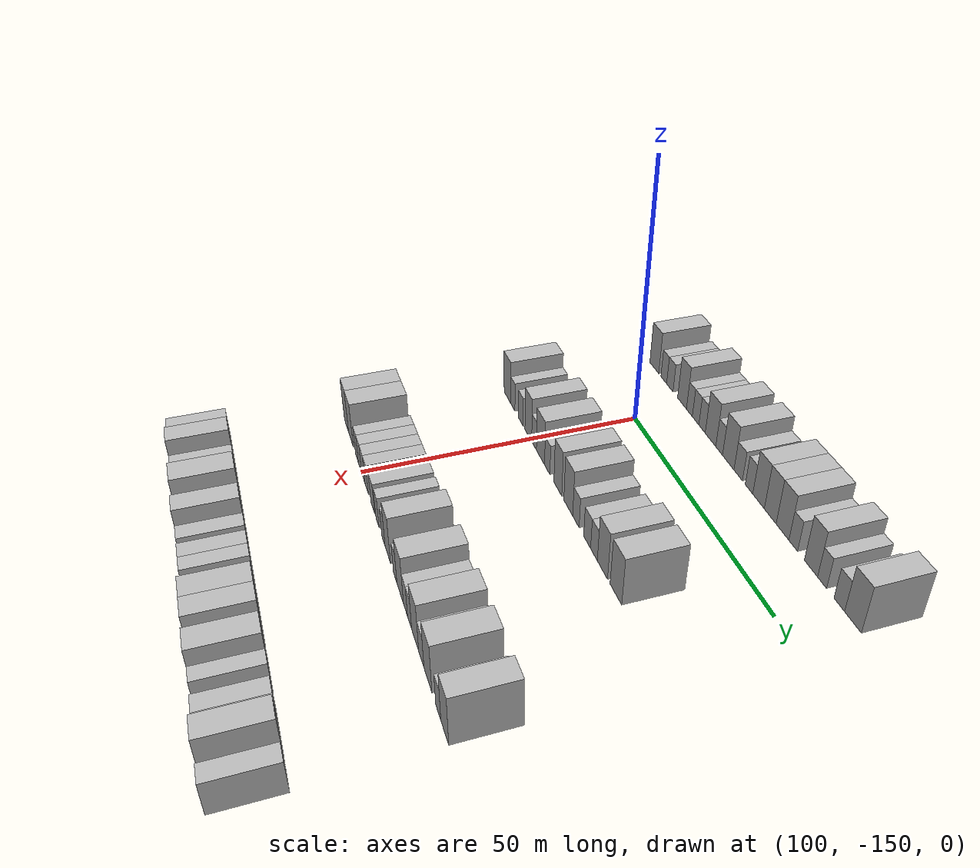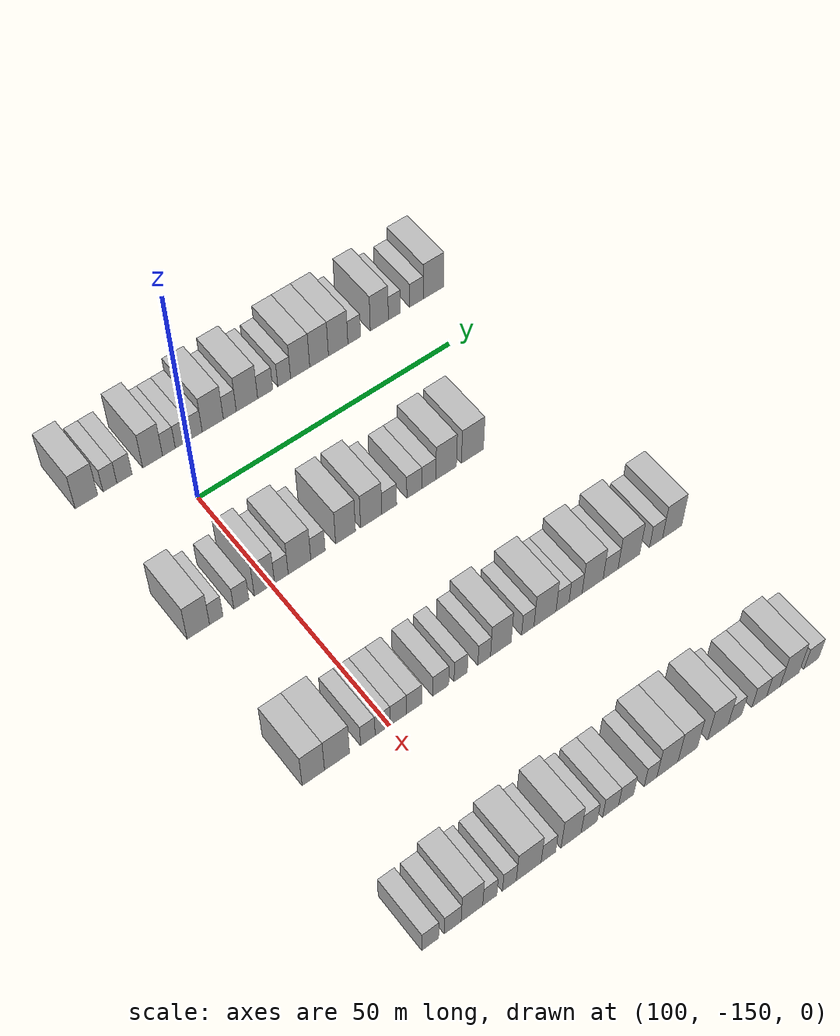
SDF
<sdf version="1.6">
 <world name="default">
  <model name="building_533">
   <static>1</static>
   <pose>85.0000 -164.3437 0 0.000000 0.000000 0.000000</pose>
   <link name="link">
    <pose>0 0 4.50 0 0 0</pose>
    <collision name="collision"><geometry><box><size>10.0000 4.1653 9.0000</size></box></geometry></collision>
    <visual name="visual">
     <cast_shadows>0</cast_shadows>
     <geometry><box><size>10.0000 4.1653 9.0000</size></box></geometry>
     <material>
      <script>
       <uri>model://HANNAS_wall/materials/scripts</uri>
       <uri>model://HANNAS_wall/materials/textures</uri>
       <name>vrc/HANNAS_wall</name>
      </script>
     </material>
    </visual>
   </link>
  </model>
  <model name="building_534">
   <static>1</static>
   <pose>85.0000 -159.9639 0 0.000000 0.000000 0.000000</pose>
   <link name="link">
    <pose>0 0 3.00 0 0 0</pose>
    <collision name="collision"><geometry><box><size>10.0000 2.5944 6.0000</size></box></geometry></collision>
    <visual name="visual">
     <cast_shadows>0</cast_shadows>
     <geometry><box><size>10.0000 2.5944 6.0000</size></box></geometry>
     <material>
      <script>
       <uri>model://HANNAS_wall/materials/scripts</uri>
       <uri>model://HANNAS_wall/materials/textures</uri>
       <name>vrc/HANNAS_wall</name>
      </script>
     </material>
    </visual>
   </link>
  </model>
  <model name="building_535">
   <static>1</static>
   <pose>85.0000 -157.2455 0 0.000000 0.000000 0.000000</pose>
   <link name="link">
    <pose>0 0 3.00 0 0 0</pose>
    <collision name="collision"><geometry><box><size>10.0000 2.8423 6.0000</size></box></geometry></collision>
    <visual name="visual">
     <cast_shadows>0</cast_shadows>
     <geometry><box><size>10.0000 2.8423 6.0000</size></box></geometry>
     <material>
      <script>
       <uri>model://HANNAS_wall/materials/scripts</uri>
       <uri>model://HANNAS_wall/materials/textures</uri>
       <name>vrc/HANNAS_wall</name>
      </script>
     </material>
    </visual>
   </link>
  </model>
  <model name="building_536">
   <static>1</static>
   <pose>85.0000 -151.9425 0 0.000000 0.000000 0.000000</pose>
   <link name="link">
    <pose>0 0 4.50 0 0 0</pose>
    <collision name="collision"><geometry><box><size>10.0000 3.7637 9.0000</size></box></geometry></collision>
    <visual name="visual">
     <cast_shadows>0</cast_shadows>
     <geometry><box><size>10.0000 3.7637 9.0000</size></box></geometry>
     <material>
      <script>
       <uri>model://HANNAS_wall/materials/scripts</uri>
       <uri>model://HANNAS_wall/materials/textures</uri>
       <name>vrc/HANNAS_wall</name>
      </script>
     </material>
    </visual>
   </link>
  </model>
  <model name="building_537">
   <static>1</static>
   <pose>85.0000 -148.8406 0 0.000000 0.000000 0.000000</pose>
   <link name="link">
    <pose>0 0 3.00 0 0 0</pose>
    <collision name="collision"><geometry><box><size>10.0000 2.4400 6.0000</size></box></geometry></collision>
    <visual name="visual">
     <cast_shadows>0</cast_shadows>
     <geometry><box><size>10.0000 2.4400 6.0000</size></box></geometry>
     <material>
      <script>
       <uri>model://HANNAS_wall/materials/scripts</uri>
       <uri>model://HANNAS_wall/materials/textures</uri>
       <name>vrc/HANNAS_wall</name>
      </script>
     </material>
    </visual>
   </link>
  </model>
  <model name="building_538">
   <static>1</static>
   <pose>85.0000 -146.2922 0 0.000000 0.000000 0.000000</pose>
   <link name="link">
    <pose>0 0 3.00 0 0 0</pose>
    <collision name="collision"><geometry><box><size>10.0000 2.6570 6.0000</size></box></geometry></collision>
    <visual name="visual">
     <cast_shadows>0</cast_shadows>
     <geometry><box><size>10.0000 2.6570 6.0000</size></box></geometry>
     <material>
      <script>
       <uri>model://HANNAS_wall/materials/scripts</uri>
       <uri>model://HANNAS_wall/materials/textures</uri>
       <name>vrc/HANNAS_wall</name>
      </script>
     </material>
    </visual>
   </link>
  </model>
  <model name="building_539">
   <static>1</static>
   <pose>85.0000 -143.6993 0 0.000000 0.000000 0.000000</pose>
   <link name="link">
    <pose>0 0 3.00 0 0 0</pose>
    <collision name="collision"><geometry><box><size>10.0000 2.5288 6.0000</size></box></geometry></collision>
    <visual name="visual">
     <cast_shadows>0</cast_shadows>
     <geometry><box><size>10.0000 2.5288 6.0000</size></box></geometry>
     <material>
      <script>
       <uri>model://HANNAS_wall/materials/scripts</uri>
       <uri>model://HANNAS_wall/materials/textures</uri>
       <name>vrc/HANNAS_wall</name>
      </script>
     </material>
    </visual>
   </link>
  </model>
  <model name="building_540">
   <static>1</static>
   <pose>85.0000 -140.3887 0 0.000000 0.000000 0.000000</pose>
   <link name="link">
    <pose>0 0 4.50 0 0 0</pose>
    <collision name="collision"><geometry><box><size>10.0000 4.0924 9.0000</size></box></geometry></collision>
    <visual name="visual">
     <cast_shadows>0</cast_shadows>
     <geometry><box><size>10.0000 4.0924 9.0000</size></box></geometry>
     <material>
      <script>
       <uri>model://HANNAS_wall/materials/scripts</uri>
       <uri>model://HANNAS_wall/materials/textures</uri>
       <name>vrc/HANNAS_wall</name>
      </script>
     </material>
    </visual>
   </link>
  </model>
  <model name="building_541">
   <static>1</static>
   <pose>85.0000 -137.0763 0 0.000000 0.000000 0.000000</pose>
   <link name="link">
    <pose>0 0 3.00 0 0 0</pose>
    <collision name="collision"><geometry><box><size>10.0000 2.5324 6.0000</size></box></geometry></collision>
    <visual name="visual">
     <cast_shadows>0</cast_shadows>
     <geometry><box><size>10.0000 2.5324 6.0000</size></box></geometry>
     <material>
      <script>
       <uri>model://HANNAS_wall/materials/scripts</uri>
       <uri>model://HANNAS_wall/materials/textures</uri>
       <name>vrc/HANNAS_wall</name>
      </script>
     </material>
    </visual>
   </link>
  </model>
  <model name="building_542">
   <static>1</static>
   <pose>85.0000 -133.7089 0 0.000000 0.000000 0.000000</pose>
   <link name="link">
    <pose>0 0 4.50 0 0 0</pose>
    <collision name="collision"><geometry><box><size>10.0000 4.2025 9.0000</size></box></geometry></collision>
    <visual name="visual">
     <cast_shadows>0</cast_shadows>
     <geometry><box><size>10.0000 4.2025 9.0000</size></box></geometry>
     <material>
      <script>
       <uri>model://HANNAS_wall/materials/scripts</uri>
       <uri>model://HANNAS_wall/materials/textures</uri>
       <name>vrc/HANNAS_wall</name>
      </script>
     </material>
    </visual>
   </link>
  </model>
  <model name="building_543">
   <static>1</static>
   <pose>85.0000 -130.1119 0 0.000000 0.000000 0.000000</pose>
   <link name="link">
    <pose>0 0 3.00 0 0 0</pose>
    <collision name="collision"><geometry><box><size>10.0000 2.9914 6.0000</size></box></geometry></collision>
    <visual name="visual">
     <cast_shadows>0</cast_shadows>
     <geometry><box><size>10.0000 2.9914 6.0000</size></box></geometry>
     <material>
      <script>
       <uri>model://HANNAS_wall/materials/scripts</uri>
       <uri>model://HANNAS_wall/materials/textures</uri>
       <name>vrc/HANNAS_wall</name>
      </script>
     </material>
    </visual>
   </link>
  </model>
  <model name="building_544">
   <static>1</static>
   <pose>85.0000 -126.3355 0 0.000000 0.000000 0.000000</pose>
   <link name="link">
    <pose>0 0 3.00 0 0 0</pose>
    <collision name="collision"><geometry><box><size>10.0000 2.5615 6.0000</size></box></geometry></collision>
    <visual name="visual">
     <cast_shadows>0</cast_shadows>
     <geometry><box><size>10.0000 2.5615 6.0000</size></box></geometry>
     <material>
      <script>
       <uri>model://HANNAS_wall/materials/scripts</uri>
       <uri>model://HANNAS_wall/materials/textures</uri>
       <name>vrc/HANNAS_wall</name>
      </script>
     </material>
    </visual>
   </link>
  </model>
  <model name="building_545">
   <static>1</static>
   <pose>85.0000 -123.1326 0 0.000000 0.000000 0.000000</pose>
   <link name="link">
    <pose>0 0 4.50 0 0 0</pose>
    <collision name="collision"><geometry><box><size>10.0000 3.8442 9.0000</size></box></geometry></collision>
    <visual name="visual">
     <cast_shadows>0</cast_shadows>
     <geometry><box><size>10.0000 3.8442 9.0000</size></box></geometry>
     <material>
      <script>
       <uri>model://HANNAS_wall/materials/scripts</uri>
       <uri>model://HANNAS_wall/materials/textures</uri>
       <name>vrc/HANNAS_wall</name>
      </script>
     </material>
    </visual>
   </link>
  </model>
  <model name="building_546">
   <static>1</static>
   <pose>85.0000 -119.3163 0 0.000000 0.000000 0.000000</pose>
   <link name="link">
    <pose>0 0 4.50 0 0 0</pose>
    <collision name="collision"><geometry><box><size>10.0000 3.7884 9.0000</size></box></geometry></collision>
    <visual name="visual">
     <cast_shadows>0</cast_shadows>
     <geometry><box><size>10.0000 3.7884 9.0000</size></box></geometry>
     <material>
      <script>
       <uri>model://HANNAS_wall/materials/scripts</uri>
       <uri>model://HANNAS_wall/materials/textures</uri>
       <name>vrc/HANNAS_wall</name>
      </script>
     </material>
    </visual>
   </link>
  </model>
  <model name="building_547">
   <static>1</static>
   <pose>85.0000 -115.4372 0 0.000000 0.000000 0.000000</pose>
   <link name="link">
    <pose>0 0 4.50 0 0 0</pose>
    <collision name="collision"><geometry><box><size>10.0000 3.9698 9.0000</size></box></geometry></collision>
    <visual name="visual">
     <cast_shadows>0</cast_shadows>
     <geometry><box><size>10.0000 3.9698 9.0000</size></box></geometry>
     <material>
      <script>
       <uri>model://HANNAS_wall/materials/scripts</uri>
       <uri>model://HANNAS_wall/materials/textures</uri>
       <name>vrc/HANNAS_wall</name>
      </script>
     </material>
    </visual>
   </link>
  </model>
  <model name="building_548">
   <static>1</static>
   <pose>85.0000 -112.1477 0 0.000000 0.000000 0.000000</pose>
   <link name="link">
    <pose>0 0 3.00 0 0 0</pose>
    <collision name="collision"><geometry><box><size>10.0000 2.6091 6.0000</size></box></geometry></collision>
    <visual name="visual">
     <cast_shadows>0</cast_shadows>
     <geometry><box><size>10.0000 2.6091 6.0000</size></box></geometry>
     <material>
      <script>
       <uri>model://HANNAS_wall/materials/scripts</uri>
       <uri>model://HANNAS_wall/materials/textures</uri>
       <name>vrc/HANNAS_wall</name>
      </script>
     </material>
    </visual>
   </link>
  </model>
  <model name="building_549">
   <static>1</static>
   <pose>85.0000 -106.9671 0 0.000000 0.000000 0.000000</pose>
   <link name="link">
    <pose>0 0 4.50 0 0 0</pose>
    <collision name="collision"><geometry><box><size>10.0000 3.7522 9.0000</size></box></geometry></collision>
    <visual name="visual">
     <cast_shadows>0</cast_shadows>
     <geometry><box><size>10.0000 3.7522 9.0000</size></box></geometry>
     <material>
      <script>
       <uri>model://HANNAS_wall/materials/scripts</uri>
       <uri>model://HANNAS_wall/materials/textures</uri>
       <name>vrc/HANNAS_wall</name>
      </script>
     </material>
    </visual>
   </link>
  </model>
  <model name="building_550">
   <static>1</static>
   <pose>85.0000 -103.8448 0 0.000000 0.000000 0.000000</pose>
   <link name="link">
    <pose>0 0 3.00 0 0 0</pose>
    <collision name="collision"><geometry><box><size>10.0000 2.4924 6.0000</size></box></geometry></collision>
    <visual name="visual">
     <cast_shadows>0</cast_shadows>
     <geometry><box><size>10.0000 2.4924 6.0000</size></box></geometry>
     <material>
      <script>
       <uri>model://HANNAS_wall/materials/scripts</uri>
       <uri>model://HANNAS_wall/materials/textures</uri>
       <name>vrc/HANNAS_wall</name>
      </script>
     </material>
    </visual>
   </link>
  </model>
  <model name="building_551">
   <static>1</static>
   <pose>85.0000 -99.1982 0 0.000000 0.000000 0.000000</pose>
   <link name="link">
    <pose>0 0 3.00 0 0 0</pose>
    <collision name="collision"><geometry><box><size>10.0000 2.8006 6.0000</size></box></geometry></collision>
    <visual name="visual">
     <cast_shadows>0</cast_shadows>
     <geometry><box><size>10.0000 2.8006 6.0000</size></box></geometry>
     <material>
      <script>
       <uri>model://HANNAS_wall/materials/scripts</uri>
       <uri>model://HANNAS_wall/materials/textures</uri>
       <name>vrc/HANNAS_wall</name>
      </script>
     </material>
    </visual>
   </link>
  </model>
  <model name="building_552">
   <static>1</static>
   <pose>85.0000 -95.6535 0 0.000000 0.000000 0.000000</pose>
   <link name="link">
    <pose>0 0 4.50 0 0 0</pose>
    <collision name="collision"><geometry><box><size>10.0000 4.2888 9.0000</size></box></geometry></collision>
    <visual name="visual">
     <cast_shadows>0</cast_shadows>
     <geometry><box><size>10.0000 4.2888 9.0000</size></box></geometry>
     <material>
      <script>
       <uri>model://HANNAS_wall/materials/scripts</uri>
       <uri>model://HANNAS_wall/materials/textures</uri>
       <name>vrc/HANNAS_wall</name>
      </script>
     </material>
    </visual>
   </link>
  </model>
  <model name="building_769">
   <static>1</static>
   <pose>115.0000 -163.4485 0 0.000000 0.000000 0.000000</pose>
   <link name="link">
    <pose>0 0 4.50 0 0 0</pose>
    <collision name="collision"><geometry><box><size>10.0000 4.0801 9.0000</size></box></geometry></collision>
    <visual name="visual">
     <cast_shadows>0</cast_shadows>
     <geometry><box><size>10.0000 4.0801 9.0000</size></box></geometry>
     <material>
      <script>
       <uri>model://HANNAS_wall/materials/scripts</uri>
       <uri>model://HANNAS_wall/materials/textures</uri>
       <name>vrc/HANNAS_wall</name>
      </script>
     </material>
    </visual>
   </link>
  </model>
  <model name="building_770">
   <static>1</static>
   <pose>115.0000 -160.1868 0 0.000000 0.000000 0.000000</pose>
   <link name="link">
    <pose>0 0 3.00 0 0 0</pose>
    <collision name="collision"><geometry><box><size>10.0000 2.4434 6.0000</size></box></geometry></collision>
    <visual name="visual">
     <cast_shadows>0</cast_shadows>
     <geometry><box><size>10.0000 2.4434 6.0000</size></box></geometry>
     <material>
      <script>
       <uri>model://HANNAS_wall/materials/scripts</uri>
       <uri>model://HANNAS_wall/materials/textures</uri>
       <name>vrc/HANNAS_wall</name>
      </script>
     </material>
    </visual>
   </link>
  </model>
  <model name="building_771">
   <static>1</static>
   <pose>115.0000 -155.5765 0 0.000000 0.000000 0.000000</pose>
   <link name="link">
    <pose>0 0 3.00 0 0 0</pose>
    <collision name="collision"><geometry><box><size>10.0000 2.7772 6.0000</size></box></geometry></collision>
    <visual name="visual">
     <cast_shadows>0</cast_shadows>
     <geometry><box><size>10.0000 2.7772 6.0000</size></box></geometry>
     <material>
      <script>
       <uri>model://HANNAS_wall/materials/scripts</uri>
       <uri>model://HANNAS_wall/materials/textures</uri>
       <name>vrc/HANNAS_wall</name>
      </script>
     </material>
    </visual>
   </link>
  </model>
  <model name="building_772">
   <static>1</static>
   <pose>115.0000 -151.3048 0 0.000000 0.000000 0.000000</pose>
   <link name="link">
    <pose>0 0 4.50 0 0 0</pose>
    <collision name="collision"><geometry><box><size>10.0000 3.7663 9.0000</size></box></geometry></collision>
    <visual name="visual">
     <cast_shadows>0</cast_shadows>
     <geometry><box><size>10.0000 3.7663 9.0000</size></box></geometry>
     <material>
      <script>
       <uri>model://HANNAS_wall/materials/scripts</uri>
       <uri>model://HANNAS_wall/materials/textures</uri>
       <name>vrc/HANNAS_wall</name>
      </script>
     </material>
    </visual>
   </link>
  </model>
  <model name="building_773">
   <static>1</static>
   <pose>115.0000 -148.1415 0 0.000000 0.000000 0.000000</pose>
   <link name="link">
    <pose>0 0 3.00 0 0 0</pose>
    <collision name="collision"><geometry><box><size>10.0000 2.5602 6.0000</size></box></geometry></collision>
    <visual name="visual">
     <cast_shadows>0</cast_shadows>
     <geometry><box><size>10.0000 2.5602 6.0000</size></box></geometry>
     <material>
      <script>
       <uri>model://HANNAS_wall/materials/scripts</uri>
       <uri>model://HANNAS_wall/materials/textures</uri>
       <name>vrc/HANNAS_wall</name>
      </script>
     </material>
    </visual>
   </link>
  </model>
  <model name="building_774">
   <static>1</static>
   <pose>115.0000 -144.7266 0 0.000000 0.000000 0.000000</pose>
   <link name="link">
    <pose>0 0 4.50 0 0 0</pose>
    <collision name="collision"><geometry><box><size>10.0000 4.2696 9.0000</size></box></geometry></collision>
    <visual name="visual">
     <cast_shadows>0</cast_shadows>
     <geometry><box><size>10.0000 4.2696 9.0000</size></box></geometry>
     <material>
      <script>
       <uri>model://HANNAS_wall/materials/scripts</uri>
       <uri>model://HANNAS_wall/materials/textures</uri>
       <name>vrc/HANNAS_wall</name>
      </script>
     </material>
    </visual>
   </link>
  </model>
  <model name="building_775">
   <static>1</static>
   <pose>115.0000 -141.2272 0 0.000000 0.000000 0.000000</pose>
   <link name="link">
    <pose>0 0 3.00 0 0 0</pose>
    <collision name="collision"><geometry><box><size>10.0000 2.7291 6.0000</size></box></geometry></collision>
    <visual name="visual">
     <cast_shadows>0</cast_shadows>
     <geometry><box><size>10.0000 2.7291 6.0000</size></box></geometry>
     <material>
      <script>
       <uri>model://HANNAS_wall/materials/scripts</uri>
       <uri>model://HANNAS_wall/materials/textures</uri>
       <name>vrc/HANNAS_wall</name>
      </script>
     </material>
    </visual>
   </link>
  </model>
  <model name="building_776">
   <static>1</static>
   <pose>115.0000 -135.9565 0 0.000000 0.000000 0.000000</pose>
   <link name="link">
    <pose>0 0 4.50 0 0 0</pose>
    <collision name="collision"><geometry><box><size>10.0000 3.8124 9.0000</size></box></geometry></collision>
    <visual name="visual">
     <cast_shadows>0</cast_shadows>
     <geometry><box><size>10.0000 3.8124 9.0000</size></box></geometry>
     <material>
      <script>
       <uri>model://HANNAS_wall/materials/scripts</uri>
       <uri>model://HANNAS_wall/materials/textures</uri>
       <name>vrc/HANNAS_wall</name>
      </script>
     </material>
    </visual>
   </link>
  </model>
  <model name="building_777">
   <static>1</static>
   <pose>115.0000 -130.9983 0 0.000000 0.000000 0.000000</pose>
   <link name="link">
    <pose>0 0 4.50 0 0 0</pose>
    <collision name="collision"><geometry><box><size>10.0000 4.1040 9.0000</size></box></geometry></collision>
    <visual name="visual">
     <cast_shadows>0</cast_shadows>
     <geometry><box><size>10.0000 4.1040 9.0000</size></box></geometry>
     <material>
      <script>
       <uri>model://HANNAS_wall/materials/scripts</uri>
       <uri>model://HANNAS_wall/materials/textures</uri>
       <name>vrc/HANNAS_wall</name>
      </script>
     </material>
    </visual>
   </link>
  </model>
  <model name="building_778">
   <static>1</static>
   <pose>115.0000 -127.4901 0 0.000000 0.000000 0.000000</pose>
   <link name="link">
    <pose>0 0 3.00 0 0 0</pose>
    <collision name="collision"><geometry><box><size>10.0000 2.9124 6.0000</size></box></geometry></collision>
    <visual name="visual">
     <cast_shadows>0</cast_shadows>
     <geometry><box><size>10.0000 2.9124 6.0000</size></box></geometry>
     <material>
      <script>
       <uri>model://HANNAS_wall/materials/scripts</uri>
       <uri>model://HANNAS_wall/materials/textures</uri>
       <name>vrc/HANNAS_wall</name>
      </script>
     </material>
    </visual>
   </link>
  </model>
  <model name="building_779">
   <static>1</static>
   <pose>115.0000 -122.5526 0 0.000000 0.000000 0.000000</pose>
   <link name="link">
    <pose>0 0 3.00 0 0 0</pose>
    <collision name="collision"><geometry><box><size>10.0000 2.9626 6.0000</size></box></geometry></collision>
    <visual name="visual">
     <cast_shadows>0</cast_shadows>
     <geometry><box><size>10.0000 2.9626 6.0000</size></box></geometry>
     <material>
      <script>
       <uri>model://HANNAS_wall/materials/scripts</uri>
       <uri>model://HANNAS_wall/materials/textures</uri>
       <name>vrc/HANNAS_wall</name>
      </script>
     </material>
    </visual>
   </link>
  </model>
  <model name="building_780">
   <static>1</static>
   <pose>115.0000 -119.6679 0 0.000000 0.000000 0.000000</pose>
   <link name="link">
    <pose>0 0 3.00 0 0 0</pose>
    <collision name="collision"><geometry><box><size>10.0000 2.8067 6.0000</size></box></geometry></collision>
    <visual name="visual">
     <cast_shadows>0</cast_shadows>
     <geometry><box><size>10.0000 2.8067 6.0000</size></box></geometry>
     <material>
      <script>
       <uri>model://HANNAS_wall/materials/scripts</uri>
       <uri>model://HANNAS_wall/materials/textures</uri>
       <name>vrc/HANNAS_wall</name>
      </script>
     </material>
    </visual>
   </link>
  </model>
  <model name="building_781">
   <static>1</static>
   <pose>115.0000 -116.2077 0 0.000000 0.000000 0.000000</pose>
   <link name="link">
    <pose>0 0 4.50 0 0 0</pose>
    <collision name="collision"><geometry><box><size>10.0000 4.1136 9.0000</size></box></geometry></collision>
    <visual name="visual">
     <cast_shadows>0</cast_shadows>
     <geometry><box><size>10.0000 4.1136 9.0000</size></box></geometry>
     <material>
      <script>
       <uri>model://HANNAS_wall/materials/scripts</uri>
       <uri>model://HANNAS_wall/materials/textures</uri>
       <name>vrc/HANNAS_wall</name>
      </script>
     </material>
    </visual>
   </link>
  </model>
  <model name="building_782">
   <static>1</static>
   <pose>115.0000 -110.9227 0 0.000000 0.000000 0.000000</pose>
   <link name="link">
    <pose>0 0 4.50 0 0 0</pose>
    <collision name="collision"><geometry><box><size>10.0000 4.4564 9.0000</size></box></geometry></collision>
    <visual name="visual">
     <cast_shadows>0</cast_shadows>
     <geometry><box><size>10.0000 4.4564 9.0000</size></box></geometry>
     <material>
      <script>
       <uri>model://HANNAS_wall/materials/scripts</uri>
       <uri>model://HANNAS_wall/materials/textures</uri>
       <name>vrc/HANNAS_wall</name>
      </script>
     </material>
    </visual>
   </link>
  </model>
  <model name="building_1003">
   <static>1</static>
   <pose>145.0000 -163.7457 0 0.000000 0.000000 0.000000</pose>
   <link name="link">
    <pose>0 0 4.50 0 0 0</pose>
    <collision name="collision"><geometry><box><size>10.0000 3.9804 9.0000</size></box></geometry></collision>
    <visual name="visual">
     <cast_shadows>0</cast_shadows>
     <geometry><box><size>10.0000 3.9804 9.0000</size></box></geometry>
     <material>
      <script>
       <uri>model://HANNAS_wall/materials/scripts</uri>
       <uri>model://HANNAS_wall/materials/textures</uri>
       <name>vrc/HANNAS_wall</name>
      </script>
     </material>
    </visual>
   </link>
  </model>
  <model name="building_1004">
   <static>1</static>
   <pose>145.0000 -159.5216 0 0.000000 0.000000 0.000000</pose>
   <link name="link">
    <pose>0 0 4.50 0 0 0</pose>
    <collision name="collision"><geometry><box><size>10.0000 4.4676 9.0000</size></box></geometry></collision>
    <visual name="visual">
     <cast_shadows>0</cast_shadows>
     <geometry><box><size>10.0000 4.4676 9.0000</size></box></geometry>
     <material>
      <script>
       <uri>model://HANNAS_wall/materials/scripts</uri>
       <uri>model://HANNAS_wall/materials/textures</uri>
       <name>vrc/HANNAS_wall</name>
      </script>
     </material>
    </visual>
   </link>
  </model>
  <model name="building_1005">
   <static>1</static>
   <pose>145.0000 -153.9661 0 0.000000 0.000000 0.000000</pose>
   <link name="link">
    <pose>0 0 3.00 0 0 0</pose>
    <collision name="collision"><geometry><box><size>10.0000 2.6433 6.0000</size></box></geometry></collision>
    <visual name="visual">
     <cast_shadows>0</cast_shadows>
     <geometry><box><size>10.0000 2.6433 6.0000</size></box></geometry>
     <material>
      <script>
       <uri>model://HANNAS_wall/materials/scripts</uri>
       <uri>model://HANNAS_wall/materials/textures</uri>
       <name>vrc/HANNAS_wall</name>
      </script>
     </material>
    </visual>
   </link>
  </model>
  <model name="building_1006">
   <static>1</static>
   <pose>145.0000 -151.2412 0 0.000000 0.000000 0.000000</pose>
   <link name="link">
    <pose>0 0 3.00 0 0 0</pose>
    <collision name="collision"><geometry><box><size>10.0000 2.8065 6.0000</size></box></geometry></collision>
    <visual name="visual">
     <cast_shadows>0</cast_shadows>
     <geometry><box><size>10.0000 2.8065 6.0000</size></box></geometry>
     <material>
      <script>
       <uri>model://HANNAS_wall/materials/scripts</uri>
       <uri>model://HANNAS_wall/materials/textures</uri>
       <name>vrc/HANNAS_wall</name>
      </script>
     </material>
    </visual>
   </link>
  </model>
  <model name="building_1007">
   <static>1</static>
   <pose>145.0000 -148.3550 0 0.000000 0.000000 0.000000</pose>
   <link name="link">
    <pose>0 0 3.00 0 0 0</pose>
    <collision name="collision"><geometry><box><size>10.0000 2.9660 6.0000</size></box></geometry></collision>
    <visual name="visual">
     <cast_shadows>0</cast_shadows>
     <geometry><box><size>10.0000 2.9660 6.0000</size></box></geometry>
     <material>
      <script>
       <uri>model://HANNAS_wall/materials/scripts</uri>
       <uri>model://HANNAS_wall/materials/textures</uri>
       <name>vrc/HANNAS_wall</name>
      </script>
     </material>
    </visual>
   </link>
  </model>
  <model name="building_1008">
   <static>1</static>
   <pose>145.0000 -145.4494 0 0.000000 0.000000 0.000000</pose>
   <link name="link">
    <pose>0 0 3.00 0 0 0</pose>
    <collision name="collision"><geometry><box><size>10.0000 2.8451 6.0000</size></box></geometry></collision>
    <visual name="visual">
     <cast_shadows>0</cast_shadows>
     <geometry><box><size>10.0000 2.8451 6.0000</size></box></geometry>
     <material>
      <script>
       <uri>model://HANNAS_wall/materials/scripts</uri>
       <uri>model://HANNAS_wall/materials/textures</uri>
       <name>vrc/HANNAS_wall</name>
      </script>
     </material>
    </visual>
   </link>
  </model>
  <model name="building_1009">
   <static>1</static>
   <pose>145.0000 -140.5393 0 0.000000 0.000000 0.000000</pose>
   <link name="link">
    <pose>0 0 3.00 0 0 0</pose>
    <collision name="collision"><geometry><box><size>10.0000 2.9753 6.0000</size></box></geometry></collision>
    <visual name="visual">
     <cast_shadows>0</cast_shadows>
     <geometry><box><size>10.0000 2.9753 6.0000</size></box></geometry>
     <material>
      <script>
       <uri>model://HANNAS_wall/materials/scripts</uri>
       <uri>model://HANNAS_wall/materials/textures</uri>
       <name>vrc/HANNAS_wall</name>
      </script>
     </material>
    </visual>
   </link>
  </model>
  <model name="building_1010">
   <static>1</static>
   <pose>145.0000 -136.8011 0 0.000000 0.000000 0.000000</pose>
   <link name="link">
    <pose>0 0 3.00 0 0 0</pose>
    <collision name="collision"><geometry><box><size>10.0000 2.5011 6.0000</size></box></geometry></collision>
    <visual name="visual">
     <cast_shadows>0</cast_shadows>
     <geometry><box><size>10.0000 2.5011 6.0000</size></box></geometry>
     <material>
      <script>
       <uri>model://HANNAS_wall/materials/scripts</uri>
       <uri>model://HANNAS_wall/materials/textures</uri>
       <name>vrc/HANNAS_wall</name>
      </script>
     </material>
    </visual>
   </link>
  </model>
  <model name="building_1011">
   <static>1</static>
   <pose>145.0000 -132.3464 0 0.000000 0.000000 0.000000</pose>
   <link name="link">
    <pose>0 0 3.00 0 0 0</pose>
    <collision name="collision"><geometry><box><size>10.0000 2.4083 6.0000</size></box></geometry></collision>
    <visual name="visual">
     <cast_shadows>0</cast_shadows>
     <geometry><box><size>10.0000 2.4083 6.0000</size></box></geometry>
     <material>
      <script>
       <uri>model://HANNAS_wall/materials/scripts</uri>
       <uri>model://HANNAS_wall/materials/textures</uri>
       <name>vrc/HANNAS_wall</name>
      </script>
     </material>
    </visual>
   </link>
  </model>
  <model name="building_1012">
   <static>1</static>
   <pose>145.0000 -129.1570 0 0.000000 0.000000 0.000000</pose>
   <link name="link">
    <pose>0 0 4.50 0 0 0</pose>
    <collision name="collision"><geometry><box><size>10.0000 3.9704 9.0000</size></box></geometry></collision>
    <visual name="visual">
     <cast_shadows>0</cast_shadows>
     <geometry><box><size>10.0000 3.9704 9.0000</size></box></geometry>
     <material>
      <script>
       <uri>model://HANNAS_wall/materials/scripts</uri>
       <uri>model://HANNAS_wall/materials/textures</uri>
       <name>vrc/HANNAS_wall</name>
      </script>
     </material>
    </visual>
   </link>
  </model>
  <model name="building_1013">
   <static>1</static>
   <pose>145.0000 -123.9685 0 0.000000 0.000000 0.000000</pose>
   <link name="link">
    <pose>0 0 3.00 0 0 0</pose>
    <collision name="collision"><geometry><box><size>10.0000 2.4068 6.0000</size></box></geometry></collision>
    <visual name="visual">
     <cast_shadows>0</cast_shadows>
     <geometry><box><size>10.0000 2.4068 6.0000</size></box></geometry>
     <material>
      <script>
       <uri>model://HANNAS_wall/materials/scripts</uri>
       <uri>model://HANNAS_wall/materials/textures</uri>
       <name>vrc/HANNAS_wall</name>
      </script>
     </material>
    </visual>
   </link>
  </model>
  <model name="building_1014">
   <static>1</static>
   <pose>145.0000 -120.6151 0 0.000000 0.000000 0.000000</pose>
   <link name="link">
    <pose>0 0 4.50 0 0 0</pose>
    <collision name="collision"><geometry><box><size>10.0000 4.2999 9.0000</size></box></geometry></collision>
    <visual name="visual">
     <cast_shadows>0</cast_shadows>
     <geometry><box><size>10.0000 4.2999 9.0000</size></box></geometry>
     <material>
      <script>
       <uri>model://HANNAS_wall/materials/scripts</uri>
       <uri>model://HANNAS_wall/materials/textures</uri>
       <name>vrc/HANNAS_wall</name>
      </script>
     </material>
    </visual>
   </link>
  </model>
  <model name="building_1015">
   <static>1</static>
   <pose>145.0000 -117.1802 0 0.000000 0.000000 0.000000</pose>
   <link name="link">
    <pose>0 0 3.00 0 0 0</pose>
    <collision name="collision"><geometry><box><size>10.0000 2.5699 6.0000</size></box></geometry></collision>
    <visual name="visual">
     <cast_shadows>0</cast_shadows>
     <geometry><box><size>10.0000 2.5699 6.0000</size></box></geometry>
     <material>
      <script>
       <uri>model://HANNAS_wall/materials/scripts</uri>
       <uri>model://HANNAS_wall/materials/textures</uri>
       <name>vrc/HANNAS_wall</name>
      </script>
     </material>
    </visual>
   </link>
  </model>
  <model name="building_1016">
   <static>1</static>
   <pose>145.0000 -114.6117 0 0.000000 0.000000 0.000000</pose>
   <link name="link">
    <pose>0 0 3.00 0 0 0</pose>
    <collision name="collision"><geometry><box><size>10.0000 2.5670 6.0000</size></box></geometry></collision>
    <visual name="visual">
     <cast_shadows>0</cast_shadows>
     <geometry><box><size>10.0000 2.5670 6.0000</size></box></geometry>
     <material>
      <script>
       <uri>model://HANNAS_wall/materials/scripts</uri>
       <uri>model://HANNAS_wall/materials/textures</uri>
       <name>vrc/HANNAS_wall</name>
      </script>
     </material>
    </visual>
   </link>
  </model>
  <model name="building_1017">
   <static>1</static>
   <pose>145.0000 -111.2193 0 0.000000 0.000000 0.000000</pose>
   <link name="link">
    <pose>0 0 4.50 0 0 0</pose>
    <collision name="collision"><geometry><box><size>10.0000 4.2179 9.0000</size></box></geometry></collision>
    <visual name="visual">
     <cast_shadows>0</cast_shadows>
     <geometry><box><size>10.0000 4.2179 9.0000</size></box></geometry>
     <material>
      <script>
       <uri>model://HANNAS_wall/materials/scripts</uri>
       <uri>model://HANNAS_wall/materials/textures</uri>
       <name>vrc/HANNAS_wall</name>
      </script>
     </material>
    </visual>
   </link>
  </model>
  <model name="building_1018">
   <static>1</static>
   <pose>145.0000 -107.6119 0 0.000000 0.000000 0.000000</pose>
   <link name="link">
    <pose>0 0 3.00 0 0 0</pose>
    <collision name="collision"><geometry><box><size>10.0000 2.9970 6.0000</size></box></geometry></collision>
    <visual name="visual">
     <cast_shadows>0</cast_shadows>
     <geometry><box><size>10.0000 2.9970 6.0000</size></box></geometry>
     <material>
      <script>
       <uri>model://HANNAS_wall/materials/scripts</uri>
       <uri>model://HANNAS_wall/materials/textures</uri>
       <name>vrc/HANNAS_wall</name>
      </script>
     </material>
    </visual>
   </link>
  </model>
  <model name="building_1019">
   <static>1</static>
   <pose>145.0000 -103.9155 0 0.000000 0.000000 0.000000</pose>
   <link name="link">
    <pose>0 0 4.50 0 0 0</pose>
    <collision name="collision"><geometry><box><size>10.0000 4.3959 9.0000</size></box></geometry></collision>
    <visual name="visual">
     <cast_shadows>0</cast_shadows>
     <geometry><box><size>10.0000 4.3959 9.0000</size></box></geometry>
     <material>
      <script>
       <uri>model://HANNAS_wall/materials/scripts</uri>
       <uri>model://HANNAS_wall/materials/textures</uri>
       <name>vrc/HANNAS_wall</name>
      </script>
     </material>
    </visual>
   </link>
  </model>
  <model name="building_1020">
   <static>1</static>
   <pose>145.0000 -98.3916 0 0.000000 0.000000 0.000000</pose>
   <link name="link">
    <pose>0 0 3.00 0 0 0</pose>
    <collision name="collision"><geometry><box><size>10.0000 2.6518 6.0000</size></box></geometry></collision>
    <visual name="visual">
     <cast_shadows>0</cast_shadows>
     <geometry><box><size>10.0000 2.6518 6.0000</size></box></geometry>
     <material>
      <script>
       <uri>model://HANNAS_wall/materials/scripts</uri>
       <uri>model://HANNAS_wall/materials/textures</uri>
       <name>vrc/HANNAS_wall</name>
      </script>
     </material>
    </visual>
   </link>
  </model>
  <model name="building_1021">
   <static>1</static>
   <pose>145.0000 -95.0780 0 0.000000 0.000000 0.000000</pose>
   <link name="link">
    <pose>0 0 4.50 0 0 0</pose>
    <collision name="collision"><geometry><box><size>10.0000 3.9756 9.0000</size></box></geometry></collision>
    <visual name="visual">
     <cast_shadows>0</cast_shadows>
     <geometry><box><size>10.0000 3.9756 9.0000</size></box></geometry>
     <material>
      <script>
       <uri>model://HANNAS_wall/materials/scripts</uri>
       <uri>model://HANNAS_wall/materials/textures</uri>
       <name>vrc/HANNAS_wall</name>
      </script>
     </material>
    </visual>
   </link>
  </model>
  <model name="building_1231">
   <static>1</static>
   <pose>175.0000 -165.6017 0 0.000000 0.000000 0.000000</pose>
   <link name="link">
    <pose>0 0 3.00 0 0 0</pose>
    <collision name="collision"><geometry><box><size>10.0000 2.9051 6.0000</size></box></geometry></collision>
    <visual name="visual">
     <cast_shadows>0</cast_shadows>
     <geometry><box><size>10.0000 2.9051 6.0000</size></box></geometry>
     <material>
      <script>
       <uri>model://HANNAS_wall/materials/scripts</uri>
       <uri>model://HANNAS_wall/materials/textures</uri>
       <name>vrc/HANNAS_wall</name>
      </script>
     </material>
    </visual>
   </link>
  </model>
  <model name="building_1232">
   <static>1</static>
   <pose>175.0000 -161.6810 0 0.000000 0.000000 0.000000</pose>
   <link name="link">
    <pose>0 0 3.00 0 0 0</pose>
    <collision name="collision"><geometry><box><size>10.0000 2.9363 6.0000</size></box></geometry></collision>
    <visual name="visual">
     <cast_shadows>0</cast_shadows>
     <geometry><box><size>10.0000 2.9363 6.0000</size></box></geometry>
     <material>
      <script>
       <uri>model://HANNAS_wall/materials/scripts</uri>
       <uri>model://HANNAS_wall/materials/textures</uri>
       <name>vrc/HANNAS_wall</name>
      </script>
     </material>
    </visual>
   </link>
  </model>
  <model name="building_1233">
   <static>1</static>
   <pose>175.0000 -158.3095 0 0.000000 0.000000 0.000000</pose>
   <link name="link">
    <pose>0 0 4.50 0 0 0</pose>
    <collision name="collision"><geometry><box><size>10.0000 3.8067 9.0000</size></box></geometry></collision>
    <visual name="visual">
     <cast_shadows>0</cast_shadows>
     <geometry><box><size>10.0000 3.8067 9.0000</size></box></geometry>
     <material>
      <script>
       <uri>model://HANNAS_wall/materials/scripts</uri>
       <uri>model://HANNAS_wall/materials/textures</uri>
       <name>vrc/HANNAS_wall</name>
      </script>
     </material>
    </visual>
   </link>
  </model>
  <model name="building_1234">
   <static>1</static>
   <pose>175.0000 -155.1571 0 0.000000 0.000000 0.000000</pose>
   <link name="link">
    <pose>0 0 3.00 0 0 0</pose>
    <collision name="collision"><geometry><box><size>10.0000 2.4982 6.0000</size></box></geometry></collision>
    <visual name="visual">
     <cast_shadows>0</cast_shadows>
     <geometry><box><size>10.0000 2.4982 6.0000</size></box></geometry>
     <material>
      <script>
       <uri>model://HANNAS_wall/materials/scripts</uri>
       <uri>model://HANNAS_wall/materials/textures</uri>
       <name>vrc/HANNAS_wall</name>
      </script>
     </material>
    </visual>
   </link>
  </model>
  <model name="building_1235">
   <static>1</static>
   <pose>175.0000 -151.6708 0 0.000000 0.000000 0.000000</pose>
   <link name="link">
    <pose>0 0 3.00 0 0 0</pose>
    <collision name="collision"><geometry><box><size>10.0000 2.4746 6.0000</size></box></geometry></collision>
    <visual name="visual">
     <cast_shadows>0</cast_shadows>
     <geometry><box><size>10.0000 2.4746 6.0000</size></box></geometry>
     <material>
      <script>
       <uri>model://HANNAS_wall/materials/scripts</uri>
       <uri>model://HANNAS_wall/materials/textures</uri>
       <name>vrc/HANNAS_wall</name>
      </script>
     </material>
    </visual>
   </link>
  </model>
  <model name="building_1236">
   <static>1</static>
   <pose>175.0000 -148.1921 0 0.000000 0.000000 0.000000</pose>
   <link name="link">
    <pose>0 0 4.50 0 0 0</pose>
    <collision name="collision"><geometry><box><size>10.0000 4.4827 9.0000</size></box></geometry></collision>
    <visual name="visual">
     <cast_shadows>0</cast_shadows>
     <geometry><box><size>10.0000 4.4827 9.0000</size></box></geometry>
     <material>
      <script>
       <uri>model://HANNAS_wall/materials/scripts</uri>
       <uri>model://HANNAS_wall/materials/textures</uri>
       <name>vrc/HANNAS_wall</name>
      </script>
     </material>
    </visual>
   </link>
  </model>
  <model name="building_1237">
   <static>1</static>
   <pose>175.0000 -144.6314 0 0.000000 0.000000 0.000000</pose>
   <link name="link">
    <pose>0 0 3.00 0 0 0</pose>
    <collision name="collision"><geometry><box><size>10.0000 2.6386 6.0000</size></box></geometry></collision>
    <visual name="visual">
     <cast_shadows>0</cast_shadows>
     <geometry><box><size>10.0000 2.6386 6.0000</size></box></geometry>
     <material>
      <script>
       <uri>model://HANNAS_wall/materials/scripts</uri>
       <uri>model://HANNAS_wall/materials/textures</uri>
       <name>vrc/HANNAS_wall</name>
      </script>
     </material>
    </visual>
   </link>
  </model>
  <model name="building_1238">
   <static>1</static>
   <pose>175.0000 -140.4666 0 0.000000 0.000000 0.000000</pose>
   <link name="link">
    <pose>0 0 4.50 0 0 0</pose>
    <collision name="collision"><geometry><box><size>10.0000 3.6909 9.0000</size></box></geometry></collision>
    <visual name="visual">
     <cast_shadows>0</cast_shadows>
     <geometry><box><size>10.0000 3.6909 9.0000</size></box></geometry>
     <material>
      <script>
       <uri>model://HANNAS_wall/materials/scripts</uri>
       <uri>model://HANNAS_wall/materials/textures</uri>
       <name>vrc/HANNAS_wall</name>
      </script>
     </material>
    </visual>
   </link>
  </model>
  <model name="building_1239">
   <static>1</static>
   <pose>175.0000 -137.1241 0 0.000000 0.000000 0.000000</pose>
   <link name="link">
    <pose>0 0 3.00 0 0 0</pose>
    <collision name="collision"><geometry><box><size>10.0000 2.9941 6.0000</size></box></geometry></collision>
    <visual name="visual">
     <cast_shadows>0</cast_shadows>
     <geometry><box><size>10.0000 2.9941 6.0000</size></box></geometry>
     <material>
      <script>
       <uri>model://HANNAS_wall/materials/scripts</uri>
       <uri>model://HANNAS_wall/materials/textures</uri>
       <name>vrc/HANNAS_wall</name>
      </script>
     </material>
    </visual>
   </link>
  </model>
  <model name="building_1240">
   <static>1</static>
   <pose>175.0000 -133.1312 0 0.000000 0.000000 0.000000</pose>
   <link name="link">
    <pose>0 0 3.00 0 0 0</pose>
    <collision name="collision"><geometry><box><size>10.0000 2.9917 6.0000</size></box></geometry></collision>
    <visual name="visual">
     <cast_shadows>0</cast_shadows>
     <geometry><box><size>10.0000 2.9917 6.0000</size></box></geometry>
     <material>
      <script>
       <uri>model://HANNAS_wall/materials/scripts</uri>
       <uri>model://HANNAS_wall/materials/textures</uri>
       <name>vrc/HANNAS_wall</name>
      </script>
     </material>
    </visual>
   </link>
  </model>
  <model name="building_1241">
   <static>1</static>
   <pose>175.0000 -130.2206 0 0.000000 0.000000 0.000000</pose>
   <link name="link">
    <pose>0 0 3.00 0 0 0</pose>
    <collision name="collision"><geometry><box><size>10.0000 2.8295 6.0000</size></box></geometry></collision>
    <visual name="visual">
     <cast_shadows>0</cast_shadows>
     <geometry><box><size>10.0000 2.8295 6.0000</size></box></geometry>
     <material>
      <script>
       <uri>model://HANNAS_wall/materials/scripts</uri>
       <uri>model://HANNAS_wall/materials/textures</uri>
       <name>vrc/HANNAS_wall</name>
      </script>
     </material>
    </visual>
   </link>
  </model>
  <model name="building_1242">
   <static>1</static>
   <pose>175.0000 -125.6007 0 0.000000 0.000000 0.000000</pose>
   <link name="link">
    <pose>0 0 3.00 0 0 0</pose>
    <collision name="collision"><geometry><box><size>10.0000 2.4103 6.0000</size></box></geometry></collision>
    <visual name="visual">
     <cast_shadows>0</cast_shadows>
     <geometry><box><size>10.0000 2.4103 6.0000</size></box></geometry>
     <material>
      <script>
       <uri>model://HANNAS_wall/materials/scripts</uri>
       <uri>model://HANNAS_wall/materials/textures</uri>
       <name>vrc/HANNAS_wall</name>
      </script>
     </material>
    </visual>
   </link>
  </model>
  <model name="building_1243">
   <static>1</static>
   <pose>175.0000 -122.3737 0 0.000000 0.000000 0.000000</pose>
   <link name="link">
    <pose>0 0 4.50 0 0 0</pose>
    <collision name="collision"><geometry><box><size>10.0000 4.0437 9.0000</size></box></geometry></collision>
    <visual name="visual">
     <cast_shadows>0</cast_shadows>
     <geometry><box><size>10.0000 4.0437 9.0000</size></box></geometry>
     <material>
      <script>
       <uri>model://HANNAS_wall/materials/scripts</uri>
       <uri>model://HANNAS_wall/materials/textures</uri>
       <name>vrc/HANNAS_wall</name>
      </script>
     </material>
    </visual>
   </link>
  </model>
  <model name="building_1244">
   <static>1</static>
   <pose>175.0000 -118.4716 0 0.000000 0.000000 0.000000</pose>
   <link name="link">
    <pose>0 0 4.50 0 0 0</pose>
    <collision name="collision"><geometry><box><size>10.0000 3.7605 9.0000</size></box></geometry></collision>
    <visual name="visual">
     <cast_shadows>0</cast_shadows>
     <geometry><box><size>10.0000 3.7605 9.0000</size></box></geometry>
     <material>
      <script>
       <uri>model://HANNAS_wall/materials/scripts</uri>
       <uri>model://HANNAS_wall/materials/textures</uri>
       <name>vrc/HANNAS_wall</name>
      </script>
     </material>
    </visual>
   </link>
  </model>
  <model name="building_1245">
   <static>1</static>
   <pose>175.0000 -112.5680 0 0.000000 0.000000 0.000000</pose>
   <link name="link">
    <pose>0 0 4.50 0 0 0</pose>
    <collision name="collision"><geometry><box><size>10.0000 4.0468 9.0000</size></box></geometry></collision>
    <visual name="visual">
     <cast_shadows>0</cast_shadows>
     <geometry><box><size>10.0000 4.0468 9.0000</size></box></geometry>
     <material>
      <script>
       <uri>model://HANNAS_wall/materials/scripts</uri>
       <uri>model://HANNAS_wall/materials/textures</uri>
       <name>vrc/HANNAS_wall</name>
      </script>
     </material>
    </visual>
   </link>
  </model>
  <model name="building_1246">
   <static>1</static>
   <pose>175.0000 -109.2139 0 0.000000 0.000000 0.000000</pose>
   <link name="link">
    <pose>0 0 3.00 0 0 0</pose>
    <collision name="collision"><geometry><box><size>10.0000 2.6613 6.0000</size></box></geometry></collision>
    <visual name="visual">
     <cast_shadows>0</cast_shadows>
     <geometry><box><size>10.0000 2.6613 6.0000</size></box></geometry>
     <material>
      <script>
       <uri>model://HANNAS_wall/materials/scripts</uri>
       <uri>model://HANNAS_wall/materials/textures</uri>
       <name>vrc/HANNAS_wall</name>
      </script>
     </material>
    </visual>
   </link>
  </model>
  <model name="building_1247">
   <static>1</static>
   <pose>175.0000 -104.4193 0 0.000000 0.000000 0.000000</pose>
   <link name="link">
    <pose>0 0 3.00 0 0 0</pose>
    <collision name="collision"><geometry><box><size>10.0000 2.9280 6.0000</size></box></geometry></collision>
    <visual name="visual">
     <cast_shadows>0</cast_shadows>
     <geometry><box><size>10.0000 2.9280 6.0000</size></box></geometry>
     <material>
      <script>
       <uri>model://HANNAS_wall/materials/scripts</uri>
       <uri>model://HANNAS_wall/materials/textures</uri>
       <name>vrc/HANNAS_wall</name>
      </script>
     </material>
    </visual>
   </link>
  </model>
  <model name="building_1248">
   <static>1</static>
   <pose>175.0000 -101.5941 0 0.000000 0.000000 0.000000</pose>
   <link name="link">
    <pose>0 0 3.00 0 0 0</pose>
    <collision name="collision"><geometry><box><size>10.0000 2.7226 6.0000</size></box></geometry></collision>
    <visual name="visual">
     <cast_shadows>0</cast_shadows>
     <geometry><box><size>10.0000 2.7226 6.0000</size></box></geometry>
     <material>
      <script>
       <uri>model://HANNAS_wall/materials/scripts</uri>
       <uri>model://HANNAS_wall/materials/textures</uri>
       <name>vrc/HANNAS_wall</name>
      </script>
     </material>
    </visual>
   </link>
  </model>
  <model name="building_1249">
   <static>1</static>
   <pose>175.0000 -98.3077 0 0.000000 0.000000 0.000000</pose>
   <link name="link">
    <pose>0 0 4.50 0 0 0</pose>
    <collision name="collision"><geometry><box><size>10.0000 3.8502 9.0000</size></box></geometry></collision>
    <visual name="visual">
     <cast_shadows>0</cast_shadows>
     <geometry><box><size>10.0000 3.8502 9.0000</size></box></geometry>
     <material>
      <script>
       <uri>model://HANNAS_wall/materials/scripts</uri>
       <uri>model://HANNAS_wall/materials/textures</uri>
       <name>vrc/HANNAS_wall</name>
      </script>
     </material>
    </visual>
   </link>
  </model>
  <model name="building_1250">
   <static>1</static>
   <pose>175.0000 -93.8871 0 0.000000 0.000000 0.000000</pose>
   <link name="link">
    <pose>0 0 3.00 0 0 0</pose>
    <collision name="collision"><geometry><box><size>10.0000 2.9909 6.0000</size></box></geometry></collision>
    <visual name="visual">
     <cast_shadows>0</cast_shadows>
     <geometry><box><size>10.0000 2.9909 6.0000</size></box></geometry>
     <material>
      <script>
       <uri>model://HANNAS_wall/materials/scripts</uri>
       <uri>model://HANNAS_wall/materials/textures</uri>
       <name>vrc/HANNAS_wall</name>
      </script>
     </material>
    </visual>
   </link>
  </model>
 </world>
</sdf>
